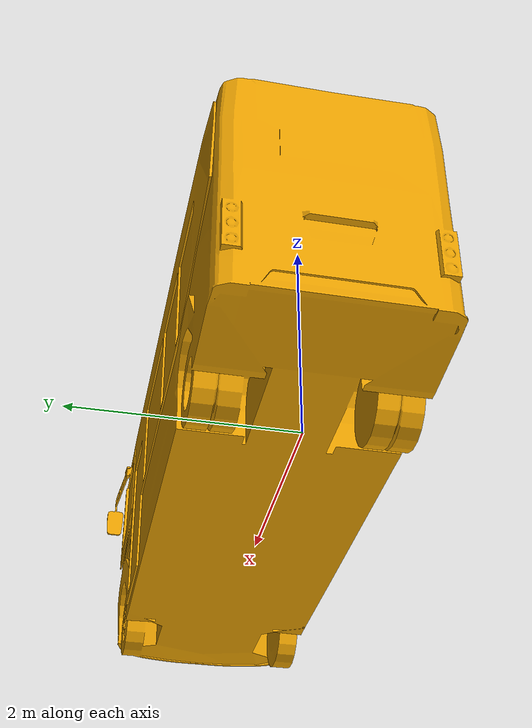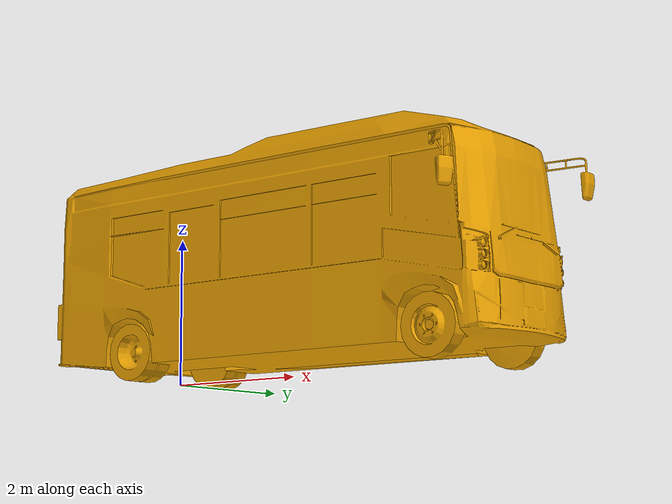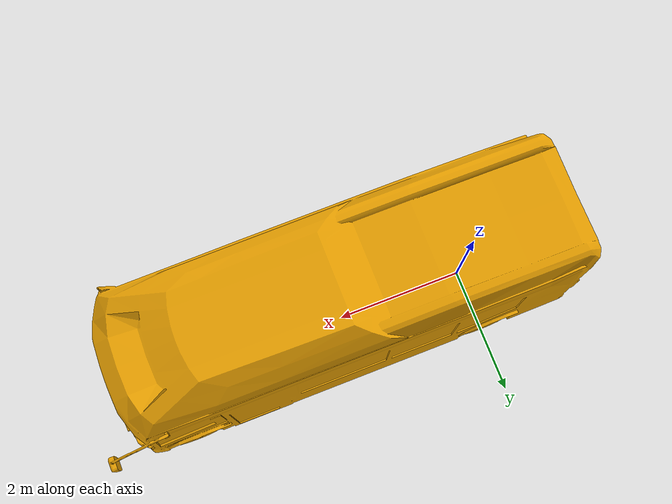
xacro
<?xml version="1.0"?>
<robot xmlns:xacro="http://ros.org/wiki/xacro">

  <!-- load parameter -->
  <xacro:property name="vehicle_info" value="${xacro.load_yaml('$(find j6_gen1_description)/config/vehicle_info.param.yaml')}"/>

  <!-- vehicle body -->
  <link name="base_link">
    <visual>
      <origin xyz="0 0 0" rpy="0.0 0.0 0.0"/>
      <geometry>
        <mesh filename="package://j6_gen1_description/mesh/BYD_J6.dae" scale="1 1 1"/>
      </geometry>
    </visual>
  </link>

</robot>
